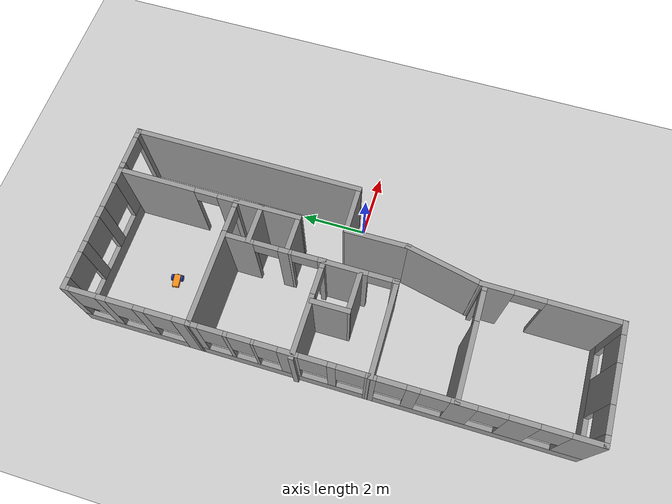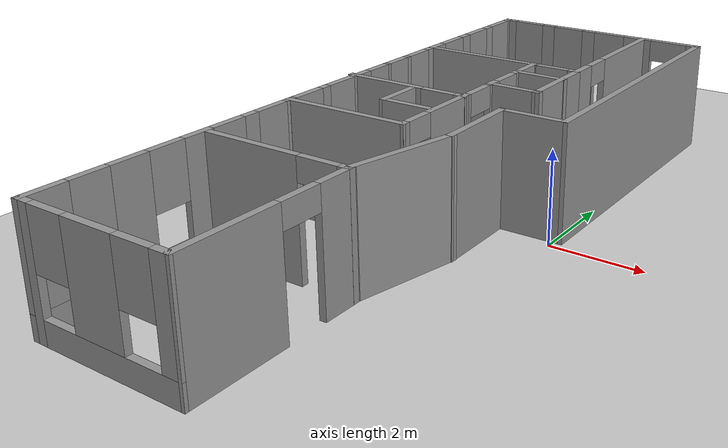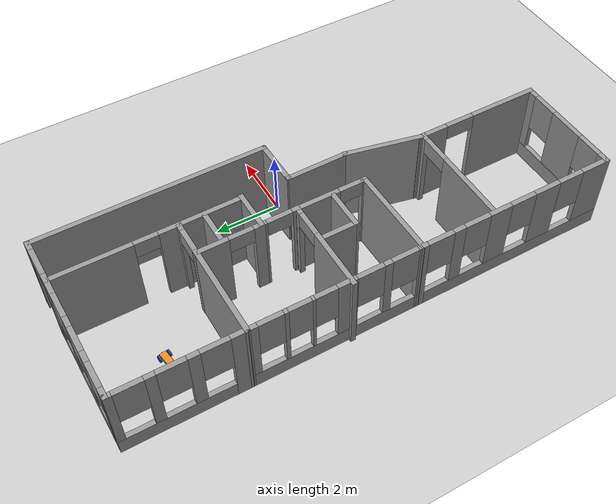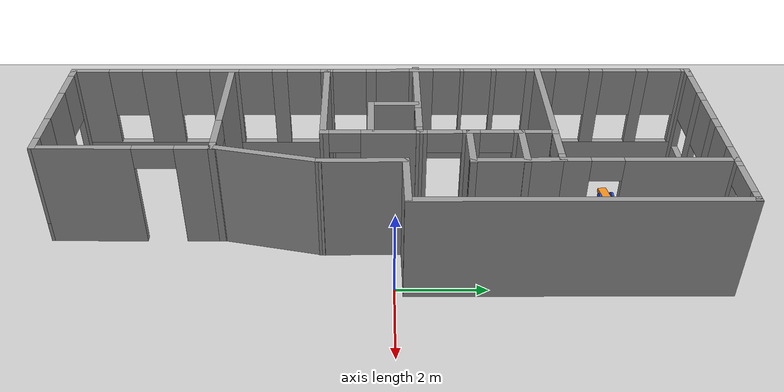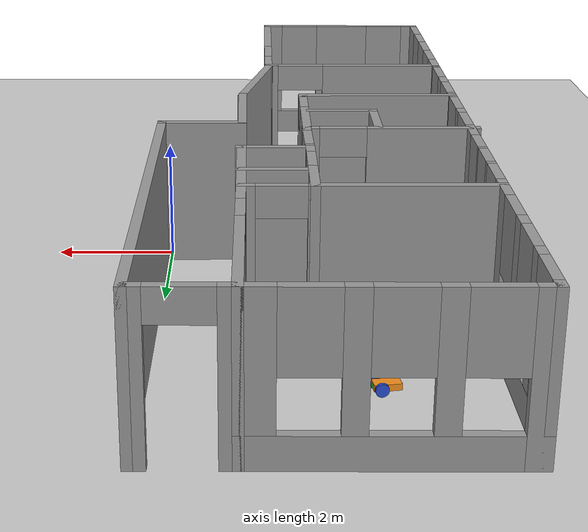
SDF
<sdf version="1.6">
 <world name="default">
  <model name="ground_plane">
   <static>1</static>
   <link name="link">
    <collision name="collision">
     <geometry><plane><normal>0 0 1</normal><size>100 100</size></plane></geometry>
     <surface>
      <contact><collide_bitmask>65535</collide_bitmask></contact>
      <friction><ode><mu>100</mu><mu2>50</mu2></ode></friction>
     </surface>
    </collision>
    <visual name="visual">
     <cast_shadows>0</cast_shadows>
     <geometry><plane><normal>0 0 1</normal><size>100 100</size></plane></geometry>
     <material>
      <script><uri>file://media/materials/scripts/gazebo.material</uri><name>Gazebo/Grey</name></script>
     </material>
    </visual>
   </link>
  </model>
  <gravity>0 0 -9.8</gravity>
  <magnetic_field>6e-06 2.3e-05 -4.2e-05</magnetic_field>
  <atmosphere type="adiabatic"/>
  <physics name="default_physics" default="0" type="ode">
   <max_step_size>0.001</max_step_size>
   <real_time_factor>1</real_time_factor>
   <real_time_update_rate>1000</real_time_update_rate>
  </physics>
  <scene><ambient>0.4 0.4 0.4 1</ambient><background>0.7 0.7 0.7 1</background><shadows>1</shadows></scene>
  <audio><device>default</device></audio>
  <spherical_coordinates>
   <surface_model>EARTH_WGS84</surface_model>
   <latitude_deg>0</latitude_deg>
   <longitude_deg>0</longitude_deg>
   <elevation>0</elevation>
   <heading_deg>0</heading_deg>
  </spherical_coordinates>
  <model name="LemonTreeHouse">
   <pose>-2.53463 -0.286823 0 0 -0 0</pose>
   <link name="Wall_0">
    <pose>-0.650431 7.38872 0 0 -0 0</pose>
    <visual name="Wall_0_Visual_0">
     <pose>-1.81339 0 1.25 0 -0 0</pose>
     <geometry><box><size>0.358291 0.15 2.5</size></box></geometry>
     <material>
      <script><uri>file://media/materials/scripts/gazebo.material</uri><name>Gazebo/Grey</name></script>
      <ambient>1 1 1 1</ambient>
     </material>
     <meta><layer>0</layer></meta>
    </visual>
    <collision name="Wall_0_Collision_0">
     <geometry><box><size>0.358291 0.15 2.5</size></box></geometry>
     <pose>-1.81339 0 1.25 0 -0 0</pose>
    </collision>
    <visual name="Wall_0_Visual_1">
     <pose>0.179145 0 0.25 0 -0 0</pose>
     <geometry><box><size>3.62678 0.15 0.5</size></box></geometry>
     <material>
      <script><uri>file://media/materials/scripts/gazebo.material</uri><name>Gazebo/Grey</name></script>
      <ambient>1 1 1 1</ambient>
     </material>
     <meta><layer>0</layer></meta>
    </visual>
    <collision name="Wall_0_Collision_1">
     <geometry><box><size>3.62678 0.15 0.5</size></box></geometry>
     <pose>0.179145 0 0.25 0 -0 0</pose>
    </collision>
    <visual name="Wall_0_Visual_2">
     <pose>-0.663231 0 1.5 0 -0 0</pose>
     <geometry><box><size>0.342028 0.15 2</size></box></geometry>
     <material>
      <script><uri>file://media/materials/scripts/gazebo.material</uri><name>Gazebo/Grey</name></script>
      <ambient>1 1 1 1</ambient>
     </material>
     <meta><layer>0</layer></meta>
    </visual>
    <collision name="Wall_0_Collision_2">
     <geometry><box><size>0.342028 0.15 2</size></box></geometry>
     <pose>-0.663231 0 1.5 0 -0 0</pose>
    </collision>
    <visual name="Wall_0_Visual_3">
     <pose>0.478797 0 1.5 0 -0 0</pose>
     <geometry><box><size>0.342028 0.15 2</size></box></geometry>
     <material>
      <script><uri>file://media/materials/scripts/gazebo.material</uri><name>Gazebo/Grey</name></script>
      <ambient>1 1 1 1</ambient>
     </material>
     <meta><layer>0</layer></meta>
    </visual>
    <collision name="Wall_0_Collision_3">
     <geometry><box><size>0.342028 0.15 2</size></box></geometry>
     <pose>0.478797 0 1.5 0 -0 0</pose>
    </collision>
    <visual name="Wall_0_Visual_4">
     <pose>1.72117 0 1.5 0 -0 0</pose>
     <geometry><box><size>0.542724 0.15 2</size></box></geometry>
     <material>
      <script><uri>file://media/materials/scripts/gazebo.material</uri><name>Gazebo/Grey</name></script>
      <ambient>1 1 1 1</ambient>
     </material>
     <meta><layer>0</layer></meta>
    </visual>
    <collision name="Wall_0_Collision_4">
     <geometry><box><size>0.542724 0.15 2</size></box></geometry>
     <pose>1.72117 0 1.5 0 -0 0</pose>
    </collision>
    <visual name="Wall_0_Visual_5">
     <pose>-1.23424 0 1.9 0 -0 0</pose>
     <geometry><box><size>0.8 0.15 1.2</size></box></geometry>
     <material>
      <script><uri>file://media/materials/scripts/gazebo.material</uri><name>Gazebo/Grey</name></script>
      <ambient>1 1 1 1</ambient>
     </material>
     <meta><layer>0</layer></meta>
    </visual>
    <collision name="Wall_0_Collision_5">
     <geometry><box><size>0.8 0.15 1.2</size></box></geometry>
     <pose>-1.23424 0 1.9 0 -0 0</pose>
    </collision>
    <visual name="Wall_0_Visual_6">
     <pose>-0.092217 0 1.9 0 -0 0</pose>
     <geometry><box><size>0.8 0.15 1.2</size></box></geometry>
     <material>
      <script><uri>file://media/materials/scripts/gazebo.material</uri><name>Gazebo/Grey</name></script>
      <ambient>1 1 1 1</ambient>
     </material>
     <meta><layer>0</layer></meta>
    </visual>
    <collision name="Wall_0_Collision_6">
     <geometry><box><size>0.8 0.15 1.2</size></box></geometry>
     <pose>-0.092217 0 1.9 0 -0 0</pose>
    </collision>
    <visual name="Wall_0_Visual_7">
     <pose>1.04981 0 1.9 0 -0 0</pose>
     <geometry><box><size>0.8 0.15 1.2</size></box></geometry>
     <material>
      <script><uri>file://media/materials/scripts/gazebo.material</uri><name>Gazebo/Grey</name></script>
      <ambient>1 1 1 1</ambient>
     </material>
     <meta><layer>0</layer></meta>
    </visual>
    <collision name="Wall_0_Collision_7">
     <geometry><box><size>0.8 0.15 1.2</size></box></geometry>
     <pose>1.04981 0 1.9 0 -0 0</pose>
    </collision>
   </link>
   <link name="Wall_1">
    <pose>1.2671 5.58872 0 0 -0 -1.5708</pose>
    <visual name="Wall_1_Visual_0">
     <pose>-0.67396 0 1.25 0 -0 0</pose>
     <geometry><box><size>2.40208 0.15 2.5</size></box></geometry>
     <material>
      <script><uri>file://media/materials/scripts/gazebo.material</uri><name>Gazebo/Grey</name></script>
      <ambient>1 1 1 1</ambient>
     </material>
     <meta><layer>0</layer></meta>
    </visual>
    <collision name="Wall_1_Collision_0">
     <geometry><box><size>2.40208 0.15 2.5</size></box></geometry>
     <pose>-0.67396 0 1.25 0 -0 0</pose>
    </collision>
    <visual name="Wall_1_Visual_1">
     <pose>1.54812 0 1.25 0 -0 0</pose>
     <geometry><box><size>0.65375 0.15 2.5</size></box></geometry>
     <material>
      <script><uri>file://media/materials/scripts/gazebo.material</uri><name>Gazebo/Grey</name></script>
      <ambient>1 1 1 1</ambient>
     </material>
     <meta><layer>0</layer></meta>
    </visual>
    <collision name="Wall_1_Collision_1">
     <geometry><box><size>0.65375 0.15 2.5</size></box></geometry>
     <pose>1.54812 0 1.25 0 -0 0</pose>
    </collision>
    <visual name="Wall_1_Visual_2">
     <pose>0.874165 0 2.25 0 -0 0</pose>
     <geometry><box><size>0.694169 0.15 0.5</size></box></geometry>
     <material>
      <script><uri>file://media/materials/scripts/gazebo.material</uri><name>Gazebo/Grey</name></script>
      <ambient>1 1 1 1</ambient>
     </material>
     <meta><layer>0</layer></meta>
    </visual>
    <collision name="Wall_1_Collision_2">
     <geometry><box><size>0.694169 0.15 0.5</size></box></geometry>
     <pose>0.874165 0 2.25 0 -0 0</pose>
    </collision>
   </link>
   <link name="Wall_11">
    <pose>-2.56647 1.24266 0 0 -0 1.57139</pose>
    <visual name="Wall_11_Visual_0">
     <pose>-2.50023 0 1.25 0 -0 0</pose>
     <geometry><box><size>0.211834 0.15 2.5</size></box></geometry>
     <material>
      <script><uri>file://media/materials/scripts/gazebo.material</uri><name>Gazebo/Grey</name></script>
      <ambient>1 1 1 1</ambient>
     </material>
     <meta><layer>0</layer></meta>
    </visual>
    <collision name="Wall_11_Collision_0">
     <geometry><box><size>0.211834 0.15 2.5</size></box></geometry>
     <pose>-2.50023 0 1.25 0 -0 0</pose>
    </collision>
    <visual name="Wall_11_Visual_1">
     <pose>0.105917 0 0.25 0 -0 0</pose>
     <geometry><box><size>5.00045 0.15 0.5</size></box></geometry>
     <material>
      <script><uri>file://media/materials/scripts/gazebo.material</uri><name>Gazebo/Grey</name></script>
      <ambient>1 1 1 1</ambient>
     </material>
     <meta><layer>0</layer></meta>
    </visual>
    <collision name="Wall_11_Collision_1">
     <geometry><box><size>5.00045 0.15 0.5</size></box></geometry>
     <pose>0.105917 0 0.25 0 -0 0</pose>
    </collision>
    <visual name="Wall_11_Visual_2">
     <pose>-1.47494 0 1.5 0 -0 0</pose>
     <geometry><box><size>0.238749 0.15 2</size></box></geometry>
     <material>
      <script><uri>file://media/materials/scripts/gazebo.material</uri><name>Gazebo/Grey</name></script>
      <ambient>1 1 1 1</ambient>
     </material>
     <meta><layer>0</layer></meta>
    </visual>
    <collision name="Wall_11_Collision_2">
     <geometry><box><size>0.238749 0.15 2</size></box></geometry>
     <pose>-1.47494 0 1.5 0 -0 0</pose>
    </collision>
    <visual name="Wall_11_Visual_3">
     <pose>-0.267718 0 1.5 0 -0 0</pose>
     <geometry><box><size>0.575684 0.15 2</size></box></geometry>
     <material>
      <script><uri>file://media/materials/scripts/gazebo.material</uri><name>Gazebo/Grey</name></script>
      <ambient>1 1 1 1</ambient>
     </material>
     <meta><layer>0</layer></meta>
    </visual>
    <collision name="Wall_11_Collision_3">
     <geometry><box><size>0.575684 0.15 2</size></box></geometry>
     <pose>-0.267718 0 1.5 0 -0 0</pose>
    </collision>
    <visual name="Wall_11_Visual_4">
     <pose>0.71332 0 1.5 0 -0 0</pose>
     <geometry><box><size>0.08365 0.15 2</size></box></geometry>
     <material>
      <script><uri>file://media/materials/scripts/gazebo.material</uri><name>Gazebo/Grey</name></script>
      <ambient>1 1 1 1</ambient>
     </material>
     <meta><layer>0</layer></meta>
    </visual>
    <collision name="Wall_11_Collision_4">
     <geometry><box><size>0.08365 0.15 2</size></box></geometry>
     <pose>0.71332 0 1.5 0 -0 0</pose>
    </collision>
    <visual name="Wall_11_Visual_5">
     <pose>1.47958 0 1.5 0 -0 0</pose>
     <geometry><box><size>0.116415 0.15 2</size></box></geometry>
     <material>
      <script><uri>file://media/materials/scripts/gazebo.material</uri><name>Gazebo/Grey</name></script>
      <ambient>1 1 1 1</ambient>
     </material>
     <meta><layer>0</layer></meta>
    </visual>
    <collision name="Wall_11_Collision_5">
     <geometry><box><size>0.116415 0.15 2</size></box></geometry>
     <pose>1.47958 0 1.5 0 -0 0</pose>
    </collision>
    <visual name="Wall_11_Visual_6">
     <pose>2.43298 0 1.5 0 -0 0</pose>
     <geometry><box><size>0.346326 0.15 2</size></box></geometry>
     <material>
      <script><uri>file://media/materials/scripts/gazebo.material</uri><name>Gazebo/Grey</name></script>
      <ambient>1 1 1 1</ambient>
     </material>
     <meta><layer>0</layer></meta>
    </visual>
    <collision name="Wall_11_Collision_6">
     <geometry><box><size>0.346326 0.15 2</size></box></geometry>
     <pose>2.43298 0 1.5 0 -0 0</pose>
    </collision>
    <visual name="Wall_11_Visual_7">
     <pose>-1.99431 0 1.9 0 -0 0</pose>
     <geometry><box><size>0.8 0.15 1.2</size></box></geometry>
     <material>
      <script><uri>file://media/materials/scripts/gazebo.material</uri><name>Gazebo/Grey</name></script>
      <ambient>1 1 1 1</ambient>
     </material>
     <meta><layer>0</layer></meta>
    </visual>
    <collision name="Wall_11_Collision_7">
     <geometry><box><size>0.8 0.15 1.2</size></box></geometry>
     <pose>-1.99431 0 1.9 0 -0 0</pose>
    </collision>
    <visual name="Wall_11_Visual_8">
     <pose>-0.95556 0 1.9 0 -0 0</pose>
     <geometry><box><size>0.8 0.15 1.2</size></box></geometry>
     <material>
      <script><uri>file://media/materials/scripts/gazebo.material</uri><name>Gazebo/Grey</name></script>
      <ambient>1 1 1 1</ambient>
     </material>
     <meta><layer>0</layer></meta>
    </visual>
    <collision name="Wall_11_Collision_8">
     <geometry><box><size>0.8 0.15 1.2</size></box></geometry>
     <pose>-0.95556 0 1.9 0 -0 0</pose>
    </collision>
    <visual name="Wall_11_Visual_9">
     <pose>0.34581 0 1.9 0 -0 0</pose>
     <geometry><box><size>0.651371 0.15 1.2</size></box></geometry>
     <material>
      <script><uri>file://media/materials/scripts/gazebo.material</uri><name>Gazebo/Grey</name></script>
      <ambient>1 1 1 1</ambient>
     </material>
     <meta><layer>0</layer></meta>
    </visual>
    <collision name="Wall_11_Collision_9">
     <geometry><box><size>0.651371 0.15 1.2</size></box></geometry>
     <pose>0.34581 0 1.9 0 -0 0</pose>
    </collision>
    <visual name="Wall_11_Visual_10">
     <pose>1.08826 0 1.9 0 -0 0</pose>
     <geometry><box><size>0.666232 0.15 1.2</size></box></geometry>
     <material>
      <script><uri>file://media/materials/scripts/gazebo.material</uri><name>Gazebo/Grey</name></script>
      <ambient>1 1 1 1</ambient>
     </material>
     <meta><layer>0</layer></meta>
    </visual>
    <collision name="Wall_11_Collision_10">
     <geometry><box><size>0.666232 0.15 1.2</size></box></geometry>
     <pose>1.08826 0 1.9 0 -0 0</pose>
    </collision>
    <visual name="Wall_11_Visual_11">
     <pose>1.8988 0 1.9 0 -0 0</pose>
     <geometry><box><size>0.722026 0.15 1.2</size></box></geometry>
     <material>
      <script><uri>file://media/materials/scripts/gazebo.material</uri><name>Gazebo/Grey</name></script>
      <ambient>1 1 1 1</ambient>
     </material>
     <meta><layer>0</layer></meta>
    </visual>
    <collision name="Wall_11_Collision_11">
     <geometry><box><size>0.722026 0.15 1.2</size></box></geometry>
     <pose>1.8988 0 1.9 0 -0 0</pose>
    </collision>
   </link>
   <link name="Wall_18">
    <pose>0.18027 2.85531 0 0 -0 -1.5708</pose>
    <visual name="Wall_18_Visual_0">
     <pose>-0.520646 0 1.25 0 -0 0</pose>
     <geometry><box><size>0.976631 0.15 2.5</size></box></geometry>
     <material>
      <script><uri>file://media/materials/scripts/gazebo.material</uri><name>Gazebo/Grey</name></script>
      <ambient>1 1 1 1</ambient>
     </material>
     <meta><layer>0</layer></meta>
    </visual>
    <collision name="Wall_18_Collision_0">
     <geometry><box><size>0.976631 0.15 2.5</size></box></geometry>
     <pose>-0.520646 0 1.25 0 -0 0</pose>
    </collision>
    <visual name="Wall_18_Visual_1">
     <pose>0.852274 0 1.25 0 -0 0</pose>
     <geometry><box><size>0.313375 0.15 2.5</size></box></geometry>
     <material>
      <script><uri>file://media/materials/scripts/gazebo.material</uri><name>Gazebo/Grey</name></script>
      <ambient>1 1 1 1</ambient>
     </material>
     <meta><layer>0</layer></meta>
    </visual>
    <collision name="Wall_18_Collision_1">
     <geometry><box><size>0.313375 0.15 2.5</size></box></geometry>
     <pose>0.852274 0 1.25 0 -0 0</pose>
    </collision>
    <visual name="Wall_18_Visual_2">
     <pose>0.331628 0 2.25 0 -0 0</pose>
     <geometry><box><size>0.727917 0.15 0.5</size></box></geometry>
     <material>
      <script><uri>file://media/materials/scripts/gazebo.material</uri><name>Gazebo/Grey</name></script>
      <ambient>1 1 1 1</ambient>
     </material>
     <meta><layer>0</layer></meta>
    </visual>
    <collision name="Wall_18_Collision_2">
     <geometry><box><size>0.727917 0.15 0.5</size></box></geometry>
     <pose>0.331628 0 2.25 0 -0 0</pose>
    </collision>
   </link>
   <link name="Wall_2">
    <pose>-0.650431 3.78124 0 0 -0 -3.13769</pose>
    <visual name="Wall_2_Visual_0">
     <pose>-1.85077 0 1.25 0 -0 0</pose>
     <geometry><box><size>0.283551 0.15 2.5</size></box></geometry>
     <material>
      <script><uri>file://media/materials/scripts/gazebo.material</uri><name>Gazebo/Grey</name></script>
      <ambient>1 1 1 1</ambient>
     </material>
     <meta><layer>0</layer></meta>
    </visual>
    <collision name="Wall_2_Collision_0">
     <geometry><box><size>0.283551 0.15 2.5</size></box></geometry>
     <pose>-1.85077 0 1.25 0 -0 0</pose>
    </collision>
    <visual name="Wall_2_Visual_1">
     <pose>0.529238 0 1.25 0 -0 0</pose>
     <geometry><box><size>2.92662 0.15 2.5</size></box></geometry>
     <material>
      <script><uri>file://media/materials/scripts/gazebo.material</uri><name>Gazebo/Grey</name></script>
      <ambient>1 1 1 1</ambient>
     </material>
     <meta><layer>0</layer></meta>
    </visual>
    <collision name="Wall_2_Collision_1">
     <geometry><box><size>2.92662 0.15 2.5</size></box></geometry>
     <pose>0.529238 0 1.25 0 -0 0</pose>
    </collision>
    <visual name="Wall_2_Visual_2">
     <pose>-1.32154 0 2.25 0 -0 0</pose>
     <geometry><box><size>0.774925 0.15 0.5</size></box></geometry>
     <material>
      <script><uri>file://media/materials/scripts/gazebo.material</uri><name>Gazebo/Grey</name></script>
      <ambient>1 1 1 1</ambient>
     </material>
     <meta><layer>0</layer></meta>
    </visual>
    <collision name="Wall_2_Collision_2">
     <geometry><box><size>0.774925 0.15 0.5</size></box></geometry>
     <pose>-1.32154 0 2.25 0 -0 0</pose>
    </collision>
   </link>
   <link name="Wall_20">
    <collision name="Wall_20_Collision">
     <geometry><box><size>1.25 0.15 2.5</size></box></geometry>
     <pose>0 0 1.25 0 -0 0</pose>
    </collision>
    <visual name="Wall_20_Visual">
     <pose>0 0 1.25 0 -0 0</pose>
     <geometry><box><size>1.25 0.15 2.5</size></box></geometry>
     <material>
      <script><uri>file://media/materials/scripts/gazebo.material</uri><name>Gazebo/Grey</name></script>
      <ambient>1 1 1 1</ambient>
     </material>
     <meta><layer>0</layer></meta>
    </visual>
    <pose>0.756422 1.92144 0 0 -0 0</pose>
   </link>
   <link name="Wall_21">
    <collision name="Wall_21_Collision">
     <geometry><box><size>2.01733 0.15 2.5</size></box></geometry>
     <pose>0 0 1.25 0 -0 0</pose>
    </collision>
    <visual name="Wall_21_Visual">
     <pose>0 0 1.25 0 -0 0</pose>
     <geometry><box><size>2.01733 0.15 2.5</size></box></geometry>
     <material>
      <script><uri>file://media/materials/scripts/gazebo.material</uri><name>Gazebo/Grey</name></script>
      <ambient>1 1 1 1</ambient>
     </material>
     <meta><layer>0</layer></meta>
    </visual>
    <pose>1.27369 2.85508 0 0 -0 1.57785</pose>
   </link>
   <link name="Wall_23">
    <collision name="Wall_23_Collision">
     <geometry><box><size>1.25 0.15 2.5</size></box></geometry>
     <pose>0 0 1.25 0 -0 0</pose>
    </collision>
    <visual name="Wall_23_Visual">
     <pose>0 0 1.25 0 -0 0</pose>
     <geometry><box><size>1.25 0.15 2.5</size></box></geometry>
     <material>
      <script><uri>file://media/materials/scripts/gazebo.material</uri><name>Gazebo/Grey</name></script>
      <ambient>1 1 1 1</ambient>
     </material>
     <meta><layer>0</layer></meta>
    </visual>
    <pose>0.738618 3.04863 0 0 -0 0</pose>
   </link>
   <link name="Wall_25">
    <pose>-1.22713 0.843029 0 0 -0 0</pose>
    <visual name="Wall_25_Visual_0">
     <pose>-0.544839 0 1.25 0 -0 0</pose>
     <geometry><box><size>1.91032 0.15 2.5</size></box></geometry>
     <material>
      <script><uri>file://media/materials/scripts/gazebo.material</uri><name>Gazebo/Grey</name></script>
      <ambient>1 1 1 1</ambient>
     </material>
     <meta><layer>0</layer></meta>
    </visual>
    <collision name="Wall_25_Collision_0">
     <geometry><box><size>1.91032 0.15 2.5</size></box></geometry>
     <pose>-0.544839 0 1.25 0 -0 0</pose>
    </collision>
    <visual name="Wall_25_Visual_1">
     <pose>1.35387 0 1.25 0 -0 0</pose>
     <geometry><box><size>0.292269 0.15 2.5</size></box></geometry>
     <material>
      <script><uri>file://media/materials/scripts/gazebo.material</uri><name>Gazebo/Grey</name></script>
      <ambient>1 1 1 1</ambient>
     </material>
     <meta><layer>0</layer></meta>
    </visual>
    <collision name="Wall_25_Collision_1">
     <geometry><box><size>0.292269 0.15 2.5</size></box></geometry>
     <pose>1.35387 0 1.25 0 -0 0</pose>
    </collision>
    <visual name="Wall_25_Visual_2">
     <pose>0.809026 0 2.25 0 -0 0</pose>
     <geometry><box><size>0.79741 0.15 0.5</size></box></geometry>
     <material>
      <script><uri>file://media/materials/scripts/gazebo.material</uri><name>Gazebo/Grey</name></script>
      <ambient>1 1 1 1</ambient>
     </material>
     <meta><layer>0</layer></meta>
    </visual>
    <collision name="Wall_25_Collision_2">
     <geometry><box><size>0.79741 0.15 0.5</size></box></geometry>
     <pose>0.809026 0 2.25 0 -0 0</pose>
    </collision>
   </link>
   <link name="Wall_3">
    <pose>-2.56797 5.58872 0 0 -0 1.5708</pose>
    <visual name="Wall_3_Visual_0">
     <pose>-1.62047 0 1.25 0 -0 0</pose>
     <geometry><box><size>0.509059 0.15 2.5</size></box></geometry>
     <material>
      <script><uri>file://media/materials/scripts/gazebo.material</uri><name>Gazebo/Grey</name></script>
      <ambient>1 1 1 1</ambient>
     </material>
     <meta><layer>0</layer></meta>
    </visual>
    <collision name="Wall_3_Collision_0">
     <geometry><box><size>0.509059 0.15 2.5</size></box></geometry>
     <pose>-1.62047 0 1.25 0 -0 0</pose>
    </collision>
    <visual name="Wall_3_Visual_1">
     <pose>0.254529 0 0.25 0 -0 0</pose>
     <geometry><box><size>3.24094 0.15 0.5</size></box></geometry>
     <material>
      <script><uri>file://media/materials/scripts/gazebo.material</uri><name>Gazebo/Grey</name></script>
      <ambient>1 1 1 1</ambient>
     </material>
     <meta><layer>0</layer></meta>
    </visual>
    <collision name="Wall_3_Collision_1">
     <geometry><box><size>3.24094 0.15 0.5</size></box></geometry>
     <pose>0.254529 0 0.25 0 -0 0</pose>
    </collision>
    <visual name="Wall_3_Visual_2">
     <pose>-0.402761 0 1.5 0 -0 0</pose>
     <geometry><box><size>0.32636 0.15 2</size></box></geometry>
     <material>
      <script><uri>file://media/materials/scripts/gazebo.material</uri><name>Gazebo/Grey</name></script>
      <ambient>1 1 1 1</ambient>
     </material>
     <meta><layer>0</layer></meta>
    </visual>
    <collision name="Wall_3_Collision_2">
     <geometry><box><size>0.32636 0.15 2</size></box></geometry>
     <pose>-0.402761 0 1.5 0 -0 0</pose>
    </collision>
    <visual name="Wall_3_Visual_3">
     <pose>0.703485 0 1.5 0 -0 0</pose>
     <geometry><box><size>0.286133 0.15 2</size></box></geometry>
     <material>
      <script><uri>file://media/materials/scripts/gazebo.material</uri><name>Gazebo/Grey</name></script>
      <ambient>1 1 1 1</ambient>
     </material>
     <meta><layer>0</layer></meta>
    </visual>
    <collision name="Wall_3_Collision_3">
     <geometry><box><size>0.286133 0.15 2</size></box></geometry>
     <pose>0.703485 0 1.5 0 -0 0</pose>
    </collision>
    <visual name="Wall_3_Visual_4">
     <pose>1.76078 0 1.5 0 -0 0</pose>
     <geometry><box><size>0.228448 0.15 2</size></box></geometry>
     <material>
      <script><uri>file://media/materials/scripts/gazebo.material</uri><name>Gazebo/Grey</name></script>
      <ambient>1 1 1 1</ambient>
     </material>
     <meta><layer>0</layer></meta>
    </visual>
    <collision name="Wall_3_Collision_4">
     <geometry><box><size>0.228448 0.15 2</size></box></geometry>
     <pose>1.76078 0 1.5 0 -0 0</pose>
    </collision>
    <visual name="Wall_3_Visual_5">
     <pose>-0.965941 0 1.9 0 -0 0</pose>
     <geometry><box><size>0.8 0.15 1.2</size></box></geometry>
     <material>
      <script><uri>file://media/materials/scripts/gazebo.material</uri><name>Gazebo/Grey</name></script>
      <ambient>1 1 1 1</ambient>
     </material>
     <meta><layer>0</layer></meta>
    </visual>
    <collision name="Wall_3_Collision_5">
     <geometry><box><size>0.8 0.15 1.2</size></box></geometry>
     <pose>-0.965941 0 1.9 0 -0 0</pose>
    </collision>
    <visual name="Wall_3_Visual_6">
     <pose>0.160419 0 1.9 0 -0 0</pose>
     <geometry><box><size>0.8 0.15 1.2</size></box></geometry>
     <material>
      <script><uri>file://media/materials/scripts/gazebo.material</uri><name>Gazebo/Grey</name></script>
      <ambient>1 1 1 1</ambient>
     </material>
     <meta><layer>0</layer></meta>
    </visual>
    <collision name="Wall_3_Collision_6">
     <geometry><box><size>0.8 0.15 1.2</size></box></geometry>
     <pose>0.160419 0 1.9 0 -0 0</pose>
    </collision>
    <visual name="Wall_3_Visual_7">
     <pose>1.24655 0 1.9 0 -0 0</pose>
     <geometry><box><size>0.8 0.15 1.2</size></box></geometry>
     <material>
      <script><uri>file://media/materials/scripts/gazebo.material</uri><name>Gazebo/Grey</name></script>
      <ambient>1 1 1 1</ambient>
     </material>
     <meta><layer>0</layer></meta>
    </visual>
    <collision name="Wall_3_Collision_7">
     <geometry><box><size>0.8 0.15 1.2</size></box></geometry>
     <pose>1.24655 0 1.9 0 -0 0</pose>
    </collision>
   </link>
   <link name="Wall_30">
    <pose>0.19237 1.31468 0 0 -0 1.58246</pose>
    <visual name="Wall_30_Visual_0">
     <pose>-0.427116 0 1.25 0 -0 0</pose>
     <geometry><box><size>0.239426 0.15 2.5</size></box></geometry>
     <material>
      <script><uri>file://media/materials/scripts/gazebo.material</uri><name>Gazebo/Grey</name></script>
      <ambient>1 1 1 1</ambient>
     </material>
     <meta><layer>0</layer></meta>
    </visual>
    <collision name="Wall_30_Collision_0">
     <geometry><box><size>0.239426 0.15 2.5</size></box></geometry>
     <pose>-0.427116 0 1.25 0 -0 0</pose>
    </collision>
    <visual name="Wall_30_Visual_1">
     <pose>0.502427 0 1.25 0 -0 0</pose>
     <geometry><box><size>0.088806 0.15 2.5</size></box></geometry>
     <material>
      <script><uri>file://media/materials/scripts/gazebo.material</uri><name>Gazebo/Grey</name></script>
      <ambient>1 1 1 1</ambient>
     </material>
     <meta><layer>0</layer></meta>
    </visual>
    <collision name="Wall_30_Collision_1">
     <geometry><box><size>0.088806 0.15 2.5</size></box></geometry>
     <pose>0.502427 0 1.25 0 -0 0</pose>
    </collision>
    <visual name="Wall_30_Visual_2">
     <pose>0.07531 0 2.25 0 -0 0</pose>
     <geometry><box><size>0.765427 0.15 0.5</size></box></geometry>
     <material>
      <script><uri>file://media/materials/scripts/gazebo.material</uri><name>Gazebo/Grey</name></script>
      <ambient>1 1 1 1</ambient>
     </material>
     <meta><layer>0</layer></meta>
    </visual>
    <collision name="Wall_30_Collision_2">
     <geometry><box><size>0.765427 0.15 0.5</size></box></geometry>
     <pose>0.07531 0 2.25 0 -0 0</pose>
    </collision>
   </link>
   <link name="Wall_32">
    <pose>0.18932 -0.206972 0 0 -0 -1.5708</pose>
    <visual name="Wall_32_Visual_0">
     <pose>-0.446042 0 1.25 0 -0 0</pose>
     <geometry><box><size>1.35792 0.15 2.5</size></box></geometry>
     <material>
      <script><uri>file://media/materials/scripts/gazebo.material</uri><name>Gazebo/Grey</name></script>
      <ambient>1 1 1 1</ambient>
     </material>
     <meta><layer>0</layer></meta>
    </visual>
    <collision name="Wall_32_Collision_0">
     <geometry><box><size>1.35792 0.15 2.5</size></box></geometry>
     <pose>-0.446042 0 1.25 0 -0 0</pose>
    </collision>
    <visual name="Wall_32_Visual_1">
     <pose>1.02431 0 1.25 0 -0 0</pose>
     <geometry><box><size>0.201388 0.15 2.5</size></box></geometry>
     <material>
      <script><uri>file://media/materials/scripts/gazebo.material</uri><name>Gazebo/Grey</name></script>
      <ambient>1 1 1 1</ambient>
     </material>
     <meta><layer>0</layer></meta>
    </visual>
    <collision name="Wall_32_Collision_1">
     <geometry><box><size>0.201388 0.15 2.5</size></box></geometry>
     <pose>1.02431 0 1.25 0 -0 0</pose>
    </collision>
    <visual name="Wall_32_Visual_2">
     <pose>0.578264 0 2.25 0 -0 0</pose>
     <geometry><box><size>0.690696 0.15 0.5</size></box></geometry>
     <material>
      <script><uri>file://media/materials/scripts/gazebo.material</uri><name>Gazebo/Grey</name></script>
      <ambient>1 1 1 1</ambient>
     </material>
     <meta><layer>0</layer></meta>
    </visual>
    <collision name="Wall_32_Collision_2">
     <geometry><box><size>0.690696 0.15 0.5</size></box></geometry>
     <pose>0.578264 0 2.25 0 -0 0</pose>
    </collision>
   </link>
   <link name="Wall_34">
    <collision name="Wall_34_Collision">
     <geometry><box><size>1.16519 0.15 2.5</size></box></geometry>
     <pose>0 0 1.25 0 -0 0</pose>
    </collision>
    <visual name="Wall_34_Visual">
     <pose>0 0 1.25 0 -0 0</pose>
     <geometry><box><size>1.16519 0.15 2.5</size></box></geometry>
     <material>
      <script><uri>file://media/materials/scripts/gazebo.material</uri><name>Gazebo/Grey</name></script>
      <ambient>1 1 1 1</ambient>
     </material>
     <meta><layer>0</layer></meta>
    </visual>
    <pose>-1.01259 0.286222 0 0 -0 -1.56567</pose>
   </link>
   <link name="Wall_35">
    <collision name="Wall_35_Collision">
     <geometry><box><size>1.25 0.15 2.5</size></box></geometry>
     <pose>0 0 1.25 0 -0 0</pose>
    </collision>
    <visual name="Wall_35_Visual">
     <pose>0 0 1.25 0 -0 0</pose>
     <geometry><box><size>1.25 0.15 2.5</size></box></geometry>
     <material>
      <script><uri>file://media/materials/scripts/gazebo.material</uri><name>Gazebo/Grey</name></script>
      <ambient>1 1 1 1</ambient>
     </material>
     <meta><layer>0</layer></meta>
    </visual>
    <pose>-0.459984 -0.221365 0 0 -0 0</pose>
   </link>
   <link name="Wall_5">
    <pose>1.94979 7.38872 0 0 -0 0</pose>
    <visual name="Wall_5_Visual_0">
     <pose>-0.598585 0 1.25 0 -0 0</pose>
     <geometry><box><size>0.318192 0.15 2.5</size></box></geometry>
     <material>
      <script><uri>file://media/materials/scripts/gazebo.material</uri><name>Gazebo/Grey</name></script>
      <ambient>1 1 1 1</ambient>
     </material>
     <meta><layer>0</layer></meta>
    </visual>
    <collision name="Wall_5_Collision_0">
     <geometry><box><size>0.318192 0.15 2.5</size></box></geometry>
     <pose>-0.598585 0 1.25 0 -0 0</pose>
    </collision>
    <visual name="Wall_5_Visual_1">
     <pose>0.609096 0 1.25 0 -0 0</pose>
     <geometry><box><size>0.297171 0.15 2.5</size></box></geometry>
     <material>
      <script><uri>file://media/materials/scripts/gazebo.material</uri><name>Gazebo/Grey</name></script>
      <ambient>1 1 1 1</ambient>
     </material>
     <meta><layer>0</layer></meta>
    </visual>
    <collision name="Wall_5_Collision_1">
     <geometry><box><size>0.297171 0.15 2.5</size></box></geometry>
     <pose>0.609096 0 1.25 0 -0 0</pose>
    </collision>
    <visual name="Wall_5_Visual_2">
     <pose>0.010511 0 2.25 0 -0 0</pose>
     <geometry><box><size>0.9 0.15 0.5</size></box></geometry>
     <material>
      <script><uri>file://media/materials/scripts/gazebo.material</uri><name>Gazebo/Grey</name></script>
      <ambient>1 1 1 1</ambient>
     </material>
     <meta><layer>0</layer></meta>
    </visual>
    <collision name="Wall_5_Collision_2">
     <geometry><box><size>0.9 0.15 0.5</size></box></geometry>
     <pose>0.010511 0 2.25 0 -0 0</pose>
    </collision>
   </link>
   <link name="Wall_6">
    <collision name="Wall_6_Collision">
     <geometry><box><size>7 0.15 2.5</size></box></geometry>
     <pose>0 0 1.25 0 -0 0</pose>
    </collision>
    <visual name="Wall_6_Visual">
     <pose>0 0 1.25 0 -0 0</pose>
     <geometry><box><size>7 0.15 2.5</size></box></geometry>
     <material>
      <script><uri>file://media/materials/scripts/gazebo.material</uri><name>Gazebo/Grey</name></script>
      <ambient>1 1 1 1</ambient>
     </material>
     <meta><layer>0</layer></meta>
    </visual>
    <pose>2.65213 3.96372 0 0 -0 -1.5708</pose>
   </link>
   <link name="Wall_7">
    <collision name="Wall_7_Collision">
     <geometry><box><size>1.50309 0.15 2.5</size></box></geometry>
     <pose>0 0 1.25 0 -0 0</pose>
    </collision>
    <visual name="Wall_7_Visual">
     <pose>0 0 1.25 0 -0 0</pose>
     <geometry><box><size>1.50309 0.15 2.5</size></box></geometry>
     <material>
      <script><uri>file://media/materials/scripts/gazebo.material</uri><name>Gazebo/Grey</name></script>
      <ambient>1 1 1 1</ambient>
     </material>
     <meta><layer>0</layer></meta>
    </visual>
    <pose>1.95599 0.528889 0 0 -0 -3.12706</pose>
   </link>
   <link name="Wall_76">
    <pose>-0.875229 -3.58285 0 0 -0 0</pose>
    <visual name="Wall_76_Visual_0">
     <pose>-0.584875 0 1.25 0 -0 0</pose>
     <geometry><box><size>2.33025 0.15 2.5</size></box></geometry>
     <material>
      <script><uri>file://media/materials/scripts/gazebo.material</uri><name>Gazebo/Grey</name></script>
      <ambient>1 1 1 1</ambient>
     </material>
     <meta><layer>0</layer></meta>
    </visual>
    <collision name="Wall_76_Collision_0">
     <geometry><box><size>2.33025 0.15 2.5</size></box></geometry>
     <pose>-0.584875 0 1.25 0 -0 0</pose>
    </collision>
    <visual name="Wall_76_Visual_1">
     <pose>1.61512 0 1.25 0 -0 0</pose>
     <geometry><box><size>0.269751 0.15 2.5</size></box></geometry>
     <material>
      <script><uri>file://media/materials/scripts/gazebo.material</uri><name>Gazebo/Grey</name></script>
      <ambient>1 1 1 1</ambient>
     </material>
     <meta><layer>0</layer></meta>
    </visual>
    <collision name="Wall_76_Collision_1">
     <geometry><box><size>0.269751 0.15 2.5</size></box></geometry>
     <pose>1.61512 0 1.25 0 -0 0</pose>
    </collision>
    <visual name="Wall_76_Visual_2">
     <pose>1.03025 0 2.25 0 -0 0</pose>
     <geometry><box><size>0.9 0.15 0.5</size></box></geometry>
     <material>
      <script><uri>file://media/materials/scripts/gazebo.material</uri><name>Gazebo/Grey</name></script>
      <ambient>1 1 1 1</ambient>
     </material>
     <meta><layer>0</layer></meta>
    </visual>
    <collision name="Wall_76_Collision_2">
     <geometry><box><size>0.9 0.15 0.5</size></box></geometry>
     <pose>1.03025 0 2.25 0 -0 0</pose>
    </collision>
   </link>
   <link name="Wall_78">
    <pose>-2.56497 -4.33844 0 0 -0 -1.5708</pose>
    <visual name="Wall_78_Visual_0">
     <pose>-3.00672 0 1.25 0 -0 0</pose>
     <geometry><box><size>0.236565 0.15 2.5</size></box></geometry>
     <material>
      <script><uri>file://media/materials/scripts/gazebo.material</uri><name>Gazebo/Grey</name></script>
      <ambient>1 1 1 1</ambient>
     </material>
     <meta><layer>0</layer></meta>
    </visual>
    <collision name="Wall_78_Collision_0">
     <geometry><box><size>0.236565 0.15 2.5</size></box></geometry>
     <pose>-3.00672 0 1.25 0 -0 0</pose>
    </collision>
    <visual name="Wall_78_Visual_1">
     <pose>0.118283 0 0.25 0 -0 0</pose>
     <geometry><box><size>6.01344 0.15 0.5</size></box></geometry>
     <material>
      <script><uri>file://media/materials/scripts/gazebo.material</uri><name>Gazebo/Grey</name></script>
      <ambient>1 1 1 1</ambient>
     </material>
     <meta><layer>0</layer></meta>
    </visual>
    <collision name="Wall_78_Collision_1">
     <geometry><box><size>6.01344 0.15 0.5</size></box></geometry>
     <pose>0.118283 0 0.25 0 -0 0</pose>
    </collision>
    <visual name="Wall_78_Visual_2">
     <pose>-1.90556 0 1.5 0 -0 0</pose>
     <geometry><box><size>0.365759 0.15 2</size></box></geometry>
     <material>
      <script><uri>file://media/materials/scripts/gazebo.material</uri><name>Gazebo/Grey</name></script>
      <ambient>1 1 1 1</ambient>
     </material>
     <meta><layer>0</layer></meta>
    </visual>
    <collision name="Wall_78_Collision_2">
     <geometry><box><size>0.365759 0.15 2</size></box></geometry>
     <pose>-1.90556 0 1.5 0 -0 0</pose>
    </collision>
    <visual name="Wall_78_Visual_3">
     <pose>-0.571796 0 1.5 0 -0 0</pose>
     <geometry><box><size>0.70176 0.15 2</size></box></geometry>
     <material>
      <script><uri>file://media/materials/scripts/gazebo.material</uri><name>Gazebo/Grey</name></script>
      <ambient>1 1 1 1</ambient>
     </material>
     <meta><layer>0</layer></meta>
    </visual>
    <collision name="Wall_78_Collision_3">
     <geometry><box><size>0.70176 0.15 2</size></box></geometry>
     <pose>-0.571796 0 1.5 0 -0 0</pose>
    </collision>
    <visual name="Wall_78_Visual_4">
     <pose>0.9898 0 1.5 0 -0 0</pose>
     <geometry><box><size>0.821432 0.15 2</size></box></geometry>
     <material>
      <script><uri>file://media/materials/scripts/gazebo.material</uri><name>Gazebo/Grey</name></script>
      <ambient>1 1 1 1</ambient>
     </material>
     <meta><layer>0</layer></meta>
    </visual>
    <collision name="Wall_78_Collision_4">
     <geometry><box><size>0.821432 0.15 2</size></box></geometry>
     <pose>0.9898 0 1.5 0 -0 0</pose>
    </collision>
    <visual name="Wall_78_Visual_5">
     <pose>2.66276 0 1.5 0 -0 0</pose>
     <geometry><box><size>0.924484 0.15 2</size></box></geometry>
     <material>
      <script><uri>file://media/materials/scripts/gazebo.material</uri><name>Gazebo/Grey</name></script>
      <ambient>1 1 1 1</ambient>
     </material>
     <meta><layer>0</layer></meta>
    </visual>
    <collision name="Wall_78_Collision_5">
     <geometry><box><size>0.924484 0.15 2</size></box></geometry>
     <pose>2.66276 0 1.5 0 -0 0</pose>
    </collision>
    <visual name="Wall_78_Visual_6">
     <pose>-2.48843 0 1.9 0 -0 0</pose>
     <geometry><box><size>0.8 0.15 1.2</size></box></geometry>
     <material>
      <script><uri>file://media/materials/scripts/gazebo.material</uri><name>Gazebo/Grey</name></script>
      <ambient>1 1 1 1</ambient>
     </material>
     <meta><layer>0</layer></meta>
    </visual>
    <collision name="Wall_78_Collision_6">
     <geometry><box><size>0.8 0.15 1.2</size></box></geometry>
     <pose>-2.48843 0 1.9 0 -0 0</pose>
    </collision>
    <visual name="Wall_78_Visual_7">
     <pose>-1.32268 0 1.9 0 -0 0</pose>
     <geometry><box><size>0.8 0.15 1.2</size></box></geometry>
     <material>
      <script><uri>file://media/materials/scripts/gazebo.material</uri><name>Gazebo/Grey</name></script>
      <ambient>1 1 1 1</ambient>
     </material>
     <meta><layer>0</layer></meta>
    </visual>
    <collision name="Wall_78_Collision_7">
     <geometry><box><size>0.8 0.15 1.2</size></box></geometry>
     <pose>-1.32268 0 1.9 0 -0 0</pose>
    </collision>
    <visual name="Wall_78_Visual_8">
     <pose>0.179084 0 1.9 0 -0 0</pose>
     <geometry><box><size>0.8 0.15 1.2</size></box></geometry>
     <material>
      <script><uri>file://media/materials/scripts/gazebo.material</uri><name>Gazebo/Grey</name></script>
      <ambient>1 1 1 1</ambient>
     </material>
     <meta><layer>0</layer></meta>
    </visual>
    <collision name="Wall_78_Collision_8">
     <geometry><box><size>0.8 0.15 1.2</size></box></geometry>
     <pose>0.179084 0 1.9 0 -0 0</pose>
    </collision>
    <visual name="Wall_78_Visual_9">
     <pose>1.80052 0 1.9 0 -0 0</pose>
     <geometry><box><size>0.8 0.15 1.2</size></box></geometry>
     <material>
      <script><uri>file://media/materials/scripts/gazebo.material</uri><name>Gazebo/Grey</name></script>
      <ambient>1 1 1 1</ambient>
     </material>
     <meta><layer>0</layer></meta>
    </visual>
    <collision name="Wall_78_Collision_9">
     <geometry><box><size>0.8 0.15 1.2</size></box></geometry>
     <pose>1.80052 0 1.9 0 -0 0</pose>
    </collision>
   </link>
   <link name="Wall_79">
    <pose>-0.889968 -7.38844 0 0 -0 0</pose>
    <visual name="Wall_79_Visual_0">
     <pose>-1.57244 0 1.25 0 -0 0</pose>
     <geometry><box><size>0.355121 0.15 2.5</size></box></geometry>
     <material>
      <script><uri>file://media/materials/scripts/gazebo.material</uri><name>Gazebo/Grey</name></script>
      <ambient>1 1 1 1</ambient>
     </material>
     <meta><layer>0</layer></meta>
    </visual>
    <collision name="Wall_79_Collision_0">
     <geometry><box><size>0.355121 0.15 2.5</size></box></geometry>
     <pose>-1.57244 0 1.25 0 -0 0</pose>
    </collision>
    <visual name="Wall_79_Visual_1">
     <pose>0.177561 0 0.25 0 -0 0</pose>
     <geometry><box><size>3.14488 0.15 0.5</size></box></geometry>
     <material>
      <script><uri>file://media/materials/scripts/gazebo.material</uri><name>Gazebo/Grey</name></script>
      <ambient>1 1 1 1</ambient>
     </material>
     <meta><layer>0</layer></meta>
    </visual>
    <collision name="Wall_79_Collision_1">
     <geometry><box><size>3.14488 0.15 0.5</size></box></geometry>
     <pose>0.177561 0 0.25 0 -0 0</pose>
    </collision>
    <visual name="Wall_79_Visual_2">
     <pose>-0.027249 0 1.5 0 -0 0</pose>
     <geometry><box><size>1.13526 0.15 2</size></box></geometry>
     <material>
      <script><uri>file://media/materials/scripts/gazebo.material</uri><name>Gazebo/Grey</name></script>
      <ambient>1 1 1 1</ambient>
     </material>
     <meta><layer>0</layer></meta>
    </visual>
    <collision name="Wall_79_Collision_2">
     <geometry><box><size>1.13526 0.15 2</size></box></geometry>
     <pose>-0.027249 0 1.5 0 -0 0</pose>
    </collision>
    <visual name="Wall_79_Visual_3">
     <pose>1.54519 0 1.5 0 -0 0</pose>
     <geometry><box><size>0.40962 0.15 2</size></box></geometry>
     <material>
      <script><uri>file://media/materials/scripts/gazebo.material</uri><name>Gazebo/Grey</name></script>
      <ambient>1 1 1 1</ambient>
     </material>
     <meta><layer>0</layer></meta>
    </visual>
    <collision name="Wall_79_Collision_3">
     <geometry><box><size>0.40962 0.15 2</size></box></geometry>
     <pose>1.54519 0 1.5 0 -0 0</pose>
    </collision>
    <visual name="Wall_79_Visual_4">
     <pose>-0.994879 0 1.9 0 -0 0</pose>
     <geometry><box><size>0.8 0.15 1.2</size></box></geometry>
     <material>
      <script><uri>file://media/materials/scripts/gazebo.material</uri><name>Gazebo/Grey</name></script>
      <ambient>1 1 1 1</ambient>
     </material>
     <meta><layer>0</layer></meta>
    </visual>
    <collision name="Wall_79_Collision_4">
     <geometry><box><size>0.8 0.15 1.2</size></box></geometry>
     <pose>-0.994879 0 1.9 0 -0 0</pose>
    </collision>
    <visual name="Wall_79_Visual_5">
     <pose>0.94038 0 1.9 0 -0 0</pose>
     <geometry><box><size>0.8 0.15 1.2</size></box></geometry>
     <material>
      <script><uri>file://media/materials/scripts/gazebo.material</uri><name>Gazebo/Grey</name></script>
      <ambient>1 1 1 1</ambient>
     </material>
     <meta><layer>0</layer></meta>
    </visual>
    <collision name="Wall_79_Collision_5">
     <geometry><box><size>0.8 0.15 1.2</size></box></geometry>
     <pose>0.94038 0 1.9 0 -0 0</pose>
    </collision>
   </link>
   <link name="Wall_8">
    <collision name="Wall_8_Collision">
     <geometry><box><size>1.93494 0.15 2.5</size></box></geometry>
     <pose>0 0 1.25 0 -0 0</pose>
    </collision>
    <visual name="Wall_8_Visual">
     <pose>0 0 1.25 0 -0 0</pose>
     <geometry><box><size>1.93494 0.15 2.5</size></box></geometry>
     <material>
      <script><uri>file://media/materials/scripts/gazebo.material</uri><name>Gazebo/Grey</name></script>
      <ambient>1 1 1 1</ambient>
     </material>
     <meta><layer>0</layer></meta>
    </visual>
    <pose>1.28652 -0.395997 0 0 -0 -1.56294</pose>
   </link>
   <link name="Wall_82">
    <pose>0.792401 -5.43334 0 0 -0 1.56703</pose>
    <visual name="Wall_82_Visual_0">
     <pose>-0.939078 0 1.25 0 -0 0</pose>
     <geometry><box><size>2.18206 0.15 2.5</size></box></geometry>
     <material>
      <script><uri>file://media/materials/scripts/gazebo.material</uri><name>Gazebo/Grey</name></script>
      <ambient>1 1 1 1</ambient>
     </material>
     <meta><layer>0</layer></meta>
    </visual>
    <collision name="Wall_82_Collision_0">
     <geometry><box><size>2.18206 0.15 2.5</size></box></geometry>
     <pose>-0.939078 0 1.25 0 -0 0</pose>
    </collision>
    <visual name="Wall_82_Visual_1">
     <pose>1.54103 0 1.25 0 -0 0</pose>
     <geometry><box><size>0.978156 0.15 2.5</size></box></geometry>
     <material>
      <script><uri>file://media/materials/scripts/gazebo.material</uri><name>Gazebo/Grey</name></script>
      <ambient>1 1 1 1</ambient>
     </material>
     <meta><layer>0</layer></meta>
    </visual>
    <collision name="Wall_82_Collision_1">
     <geometry><box><size>0.978156 0.15 2.5</size></box></geometry>
     <pose>1.54103 0 1.25 0 -0 0</pose>
    </collision>
    <visual name="Wall_82_Visual_2">
     <pose>0.601954 0 2.25 0 -0 0</pose>
     <geometry><box><size>0.9 0.15 0.5</size></box></geometry>
     <material>
      <script><uri>file://media/materials/scripts/gazebo.material</uri><name>Gazebo/Grey</name></script>
      <ambient>1 1 1 1</ambient>
     </material>
     <meta><layer>0</layer></meta>
    </visual>
    <collision name="Wall_82_Collision_2">
     <geometry><box><size>0.9 0.15 0.5</size></box></geometry>
     <pose>0.601954 0 2.25 0 -0 0</pose>
    </collision>
   </link>
   <link name="Wall_83">
    <collision name="Wall_83_Collision">
     <geometry><box><size>2.39479 0.15 2.5</size></box></geometry>
     <pose>0 0 1.25 0 -0 0</pose>
    </collision>
    <visual name="Wall_83_Visual">
     <pose>0 0 1.25 0 -0 0</pose>
     <geometry><box><size>2.39479 0.15 2.5</size></box></geometry>
     <material>
      <script><uri>file://media/materials/scripts/gazebo.material</uri><name>Gazebo/Grey</name></script>
      <ambient>1 1 1 1</ambient>
     </material>
     <meta><layer>0</layer></meta>
    </visual>
    <pose>1.04665 -2.38334 0 0 -0 1.34902</pose>
   </link>
   <link name="Wall_85">
    <collision name="Wall_85_Collision">
     <geometry><box><size>2.90447 0.15 2.5</size></box></geometry>
     <pose>0 0 1.25 0 -0 0</pose>
    </collision>
    <visual name="Wall_85_Visual">
     <pose>0 0 1.25 0 -0 0</pose>
     <geometry><box><size>2.90447 0.15 2.5</size></box></geometry>
     <material>
      <script><uri>file://media/materials/scripts/gazebo.material</uri><name>Gazebo/Grey</name></script>
      <ambient>1 1 1 1</ambient>
     </material>
     <meta><layer>0</layer></meta>
    </visual>
    <pose>-1.18782 -1.2727 0 0 -0 -3.13017</pose>
   </link>
   <static>1</static>
  </model>
  <model name="mybot">
   <link name="chassis">
    <inertial>
     <pose>0.00198 0 0.09901 0 -0 0</pose>
     <mass>10.1</mass>
     <inertia>
      <ixx>0.500991</ixx>
      <ixy>0</ixy>
      <ixz>0.0019802</ixz>
      <iyy>1.00495</iyy>
      <iyz>0</iyz>
      <izz>0.103961</izz>
     </inertia>
    </inertial>
    <collision name="chassis_fixed_joint_lump__collision_collision">
     <geometry><box><size>0.4 0.2 0.1</size></box></geometry>
    </collision>
    <collision name="chassis_fixed_joint_lump__caster_collision_collision_1">
     <pose>-0.15 0 -0.05 0 -0 0</pose>
     <geometry><sphere><radius>0.05</radius></sphere></geometry>
    </collision>
    <collision name="chassis_fixed_joint_lump__camera_collision_2">
     <pose>0.2 0 0 0 -0 0</pose>
     <geometry><box><size>0.05 0.05 0.05</size></box></geometry>
    </collision>
    <visual name="chassis_visual_visual">
     <geometry><box><size>0.4 0.2 0.1</size></box></geometry>
     <material>
      <script><name>Gazebo/Orange</name><uri>file://media/materials/scripts/gazebo.material</uri></script>
     </material>
    </visual>
    <visual name="chassis_fixed_joint_lump__caster_visual_visual_1">
     <pose>-0.15 0 -0.05 0 -0 0</pose>
     <geometry><sphere><radius>0.05</radius></sphere></geometry>
    </visual>
    <visual name="chassis_fixed_joint_lump__camera_visual_2">
     <pose>0.2 0 0 0 -0 0</pose>
     <geometry><box><size>0.05 0.05 0.05</size></box></geometry>
     <material>
      <script><name>Gazebo/Green</name><uri>file://media/materials/scripts/gazebo.material</uri></script>
     </material>
    </visual>
    <sensor name="camera1" type="camera">
     <update_rate>30</update_rate>
     <camera name="head">
      <horizontal_fov>1.39626</horizontal_fov>
      <image><width>800</width><height>800</height><format>R8G8B8</format></image>
      <clip><near>0.02</near><far>300</far></clip>
     </camera>
     <plugin name="camera_controller" filename="libgazebo_ros_camera.so">
      <alwaysOn>1</alwaysOn>
      <updateRate>0.0</updateRate>
      <cameraName>mybot/camera1</cameraName>
      <imageTopicName>image_raw</imageTopicName>
      <cameraInfoTopicName>camera_info</cameraInfoTopicName>
      <frameName>camera_link_optical</frameName>
      <hackBaseline>0.07</hackBaseline>
      <distortionK1>0.0</distortionK1>
      <distortionK2>0.0</distortionK2>
      <distortionK3>0.0</distortionK3>
      <distortionT1>0.0</distortionT1>
      <distortionT2>0.0</distortionT2>
      <robotNamespace>/</robotNamespace>
     </plugin>
     <pose>0.2 0 0 0 -0 0</pose>
    </sensor>
   </link>
   <link name="left_wheel">
    <pose>0.1 0.15 0 0 -0 0</pose>
    <inertial>
     <pose>0 0 0 -0 1.5707 1.5707</pose>
     <mass>5</mass>
     <inertia><ixx>1</ixx><ixy>0</ixy><ixz>0</ixz><iyy>1</iyy><iyz>0</iyz><izz>1</izz></inertia>
    </inertial>
    <collision name="left_wheel_fixed_joint_lump__collision_collision">
     <pose>0 0 0 3.14159 1.57079 -1.57089</pose>
     <geometry><cylinder><length>0.05</length><radius>0.1</radius></cylinder></geometry>
    </collision>
    <visual name="left_wheel_visual_visual">
     <pose>0 0 0 3.14159 1.57079 -1.57089</pose>
     <geometry><cylinder><length>0.05</length><radius>0.1</radius></cylinder></geometry>
     <material>
      <script><name>Gazebo/Blue</name><uri>file://media/materials/scripts/gazebo.material</uri></script>
     </material>
    </visual>
   </link>
   <joint name="left_wheel_hinge" type="revolute">
    <child>left_wheel</child>
    <parent>chassis</parent>
    <axis>
     <xyz>0 1 0</xyz>
     <limit><lower>-1e+16</lower><upper>1e+16</upper></limit>
     <dynamics><spring_reference>0</spring_reference><spring_stiffness>0</spring_stiffness></dynamics>
     <use_parent_model_frame>1</use_parent_model_frame>
    </axis>
   </joint>
   <link name="right_wheel">
    <pose>0.1 -0.15 0 0 -0 0</pose>
    <inertial>
     <pose>0 0 0 -0 1.5707 1.5707</pose>
     <mass>5</mass>
     <inertia><ixx>1</ixx><ixy>0</ixy><ixz>0</ixz><iyy>1</iyy><iyz>0</iyz><izz>1</izz></inertia>
    </inertial>
    <collision name="right_wheel_fixed_joint_lump__collision_collision">
     <pose>0 0 0 3.14159 1.57079 -1.57089</pose>
     <geometry><cylinder><length>0.05</length><radius>0.1</radius></cylinder></geometry>
    </collision>
    <visual name="right_wheel_visual_visual">
     <pose>0 0 0 3.14159 1.57079 -1.57089</pose>
     <geometry><cylinder><length>0.05</length><radius>0.1</radius></cylinder></geometry>
     <material>
      <script><name>Gazebo/Blue</name><uri>file://media/materials/scripts/gazebo.material</uri></script>
     </material>
    </visual>
   </link>
   <joint name="right_wheel_hinge" type="revolute">
    <child>right_wheel</child>
    <parent>chassis</parent>
    <axis>
     <xyz>0 1 0</xyz>
     <limit><lower>-1e+16</lower><upper>1e+16</upper></limit>
     <dynamics><spring_reference>0</spring_reference><spring_stiffness>0</spring_stiffness></dynamics>
     <use_parent_model_frame>1</use_parent_model_frame>
    </axis>
   </joint>
   <static>0</static>
   <plugin name="differential_drive_controller" filename="libgazebo_ros_diff_drive.so">
    <legacyMode>0</legacyMode>
    <alwaysOn>1</alwaysOn>
    <updateRate>20</updateRate>
    <leftJoint>left_wheel_hinge</leftJoint>
    <rightJoint>right_wheel_hinge</rightJoint>
    <wheelSeparation>0.3</wheelSeparation>
    <wheelDiameter>0.2</wheelDiameter>
    <torque>20</torque>
    <commandTopic>cmd_vel</commandTopic>
    <odometryTopic>odom</odometryTopic>
    <odometryFrame>odom</odometryFrame>
    <robotBaseFrame>chassis</robotBaseFrame>
    <robotNamespace>/</robotNamespace>
   </plugin>
   <pose>-3.31551 5.10147 0.100001 -0 -5e-06 0.150747</pose>
  </model>
  <light name="user_point_light_0" type="point">
   <pose>-2.23026 5.92506 1 0 -0 0</pose>
   <diffuse>0.5 0.5 0.5 1</diffuse>
   <specular>0.1 0.1 0.1 1</specular>
   <attenuation>
    <range>20</range>
    <constant>0.5</constant>
    <linear>0.01</linear>
    <quadratic>0.001</quadratic>
   </attenuation>
   <cast_shadows>0</cast_shadows>
   <direction>0 0 -1</direction>
  </light>
 </world>
</sdf>
